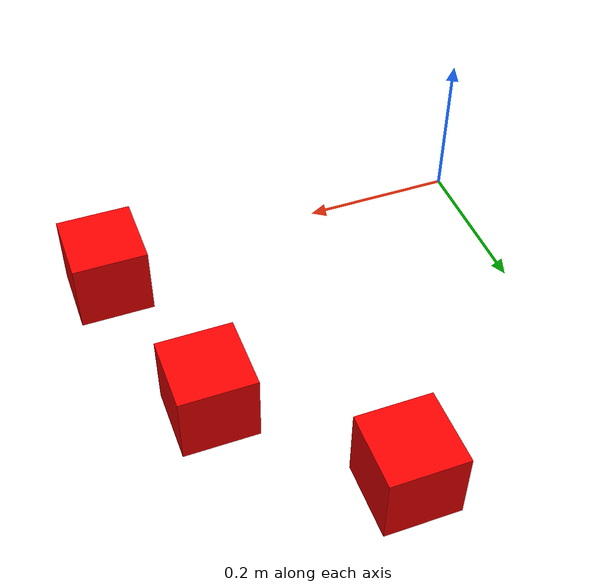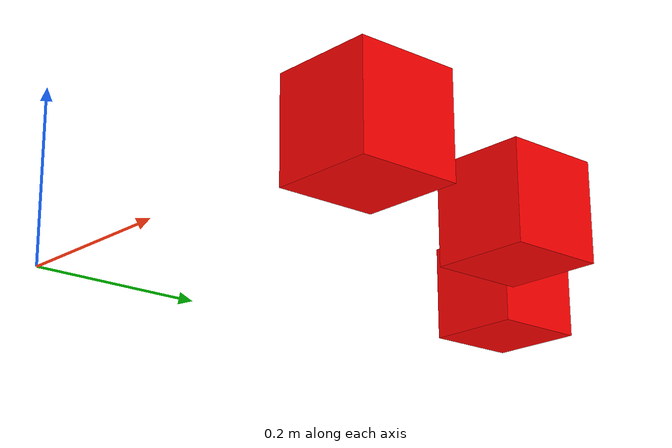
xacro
<!--
Copyright (C) 2023 eSOL Co.,Ltd. All rights reserved.
-->

<robot name="math_robot" xmlns:xacro="http://ros.org/wiki/xacro">
  <xacro:property name="side" value="0.1" />
  <!-- 定数radiusを定義 -->
  <xacro:property name="radius" value="0.5" />
  <material name="red">
    <color rgba="1.0 0.0 0.0 1.0"/>
  </material>

  <link name="base_link"/>

  <link name="body0_link">
    <visual>
      <geometry>
        <box size="${side} ${side} ${side}" />
      </geometry>
      <material name="red"/>
    </visual>
  </link>
  <joint name="body0_joint" type="fixed">
    <!-- 数式を利用して位置を指定 -->
    <origin rpy="0 0 0" xyz="${radius*cos(radians(0))} ${radius*sin(radians(0))} 0"/>
    <parent link="base_link"/>
    <child  link="body0_link"/>
  </joint>

  <link name="body1_link">
    <visual>
      <geometry>
        <box size="${side} ${side} ${side}" />
      </geometry>
      <material name="red"/>
    </visual>
  </link>
  <joint name="body1_joint" type="fixed">
    <!-- 数式を利用して位置を指定 -->
    <origin rpy="0 0 0" xyz="${radius*cos(radians(30))} ${radius*sin(radians(30))} 0"/>
    <parent link="base_link"/>
    <child  link="body1_link"/>
  </joint>

  <link name="body2_link">
    <visual>
      <geometry>
        <box size="${side} ${side} ${side}" />
      </geometry>
      <material name="red"/>
    </visual>
  </link>
  <joint name="body2_joint" type="fixed">
    <!-- 数式を利用して位置を指定 -->
    <origin rpy="0 0 0" xyz="${radius*cos(radians(60))} ${radius*sin(radians(60))} 0"/>
    <parent link="base_link"/>
    <child  link="body2_link"/>
  </joint>
</robot>
